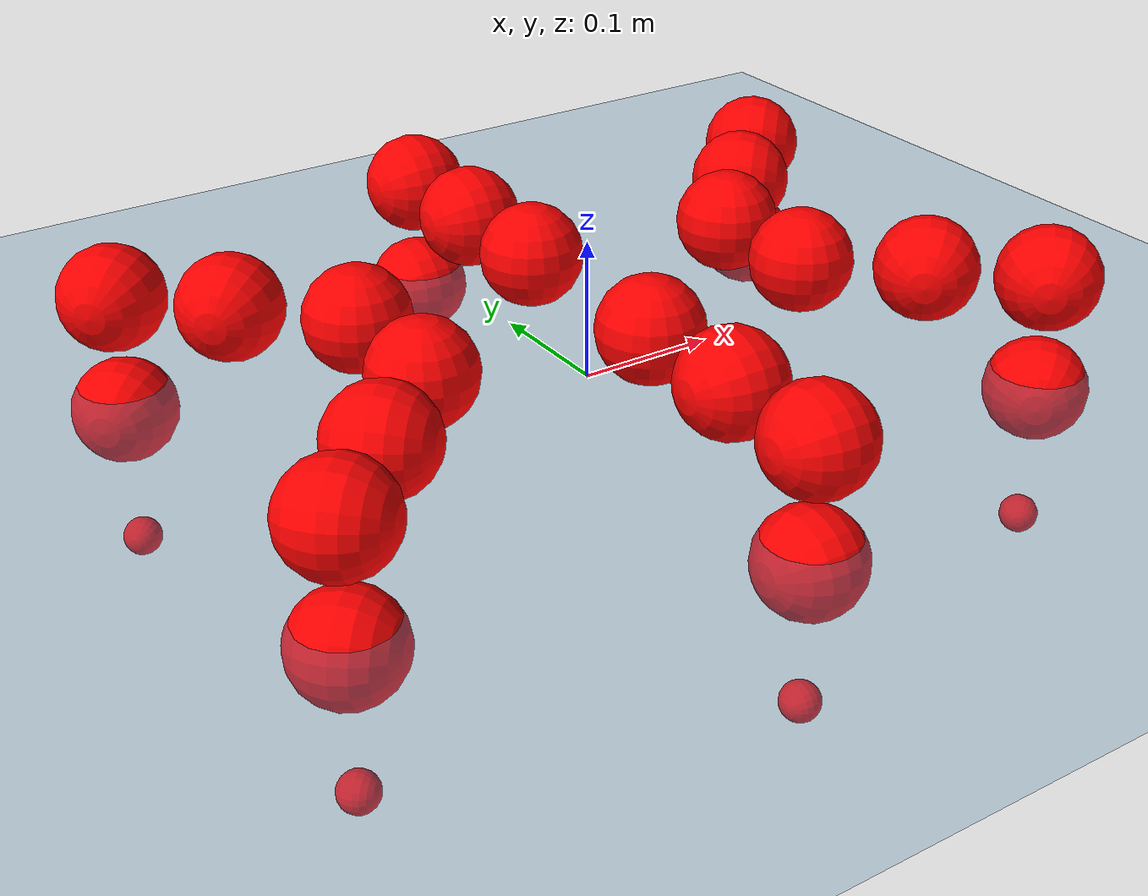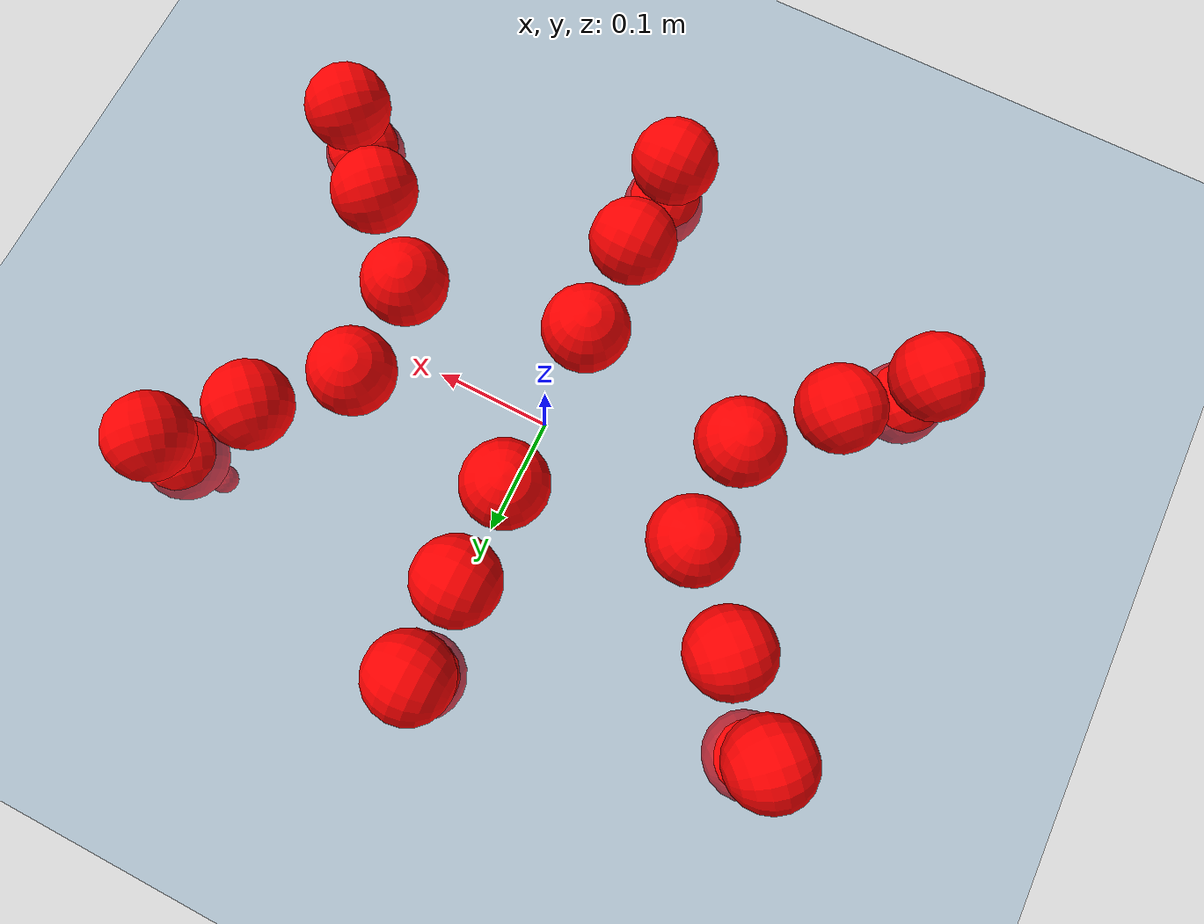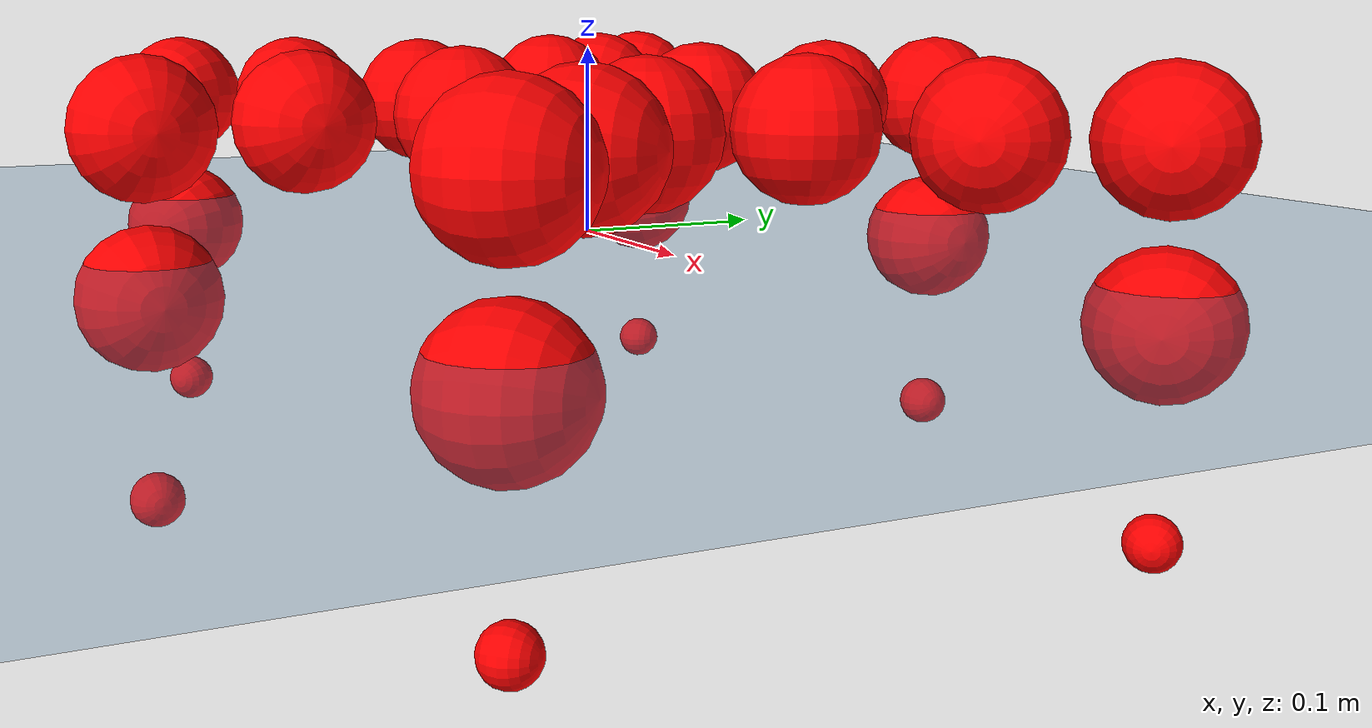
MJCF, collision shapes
<mujoco model="Golem">
  <compiler angle="radian" assetdir="assets" balanceinertia="true" inertiafromgeom="false"/>

  <option timestep="0.005" density="1.2" viscosity="2e-05"/>

  <size nkey="1"/>

  <visual>
    <quality shadowsize="8192"/>
    <map shadowclip="0.5"/>
  </visual>

  <default>
    <default class="/">
      <joint armature="0.01" damping="0.01" frictionloss="0.01"/>
      <geom contype="0" conaffinity="0" group="1" solref="-1000 -80"/>
      <site size="0.01 0.005 0.005" group="5"/>
      <general forcelimited="true" biastype="affine" gainprm="25" biasprm="0 -25 -0.5"/>
      <default class="visual">
        <geom type="mesh" group="2"/>
      </default>
      <default class="collision">
        <geom group="3"/>
      </default>
      <default class="foot">
        <geom size="0.01 0 0" condim="6" group="4" priority="1" solimp="0.015 1 0.01"/>
      </default>
      <default class="reward_collision_sphere">
        <geom group="5" rgba="1 0 0 1"/>
      </default>
    </default>
  </default>

  <asset>
    <texture type="skybox" colorspace="auto" name="//unnamed_texture_0" builtin="gradient" rgb1="0.95 0.95 0.95" rgb2="0.95 0.95 0.95" width="100" height="600"/>
    <texture type="2d" colorspace="auto" name="texplane" builtin="checker" rgb1="0.345 0.575 0.748" rgb2="0.345 0.575 0.748" markrgb="1 1 1" width="512" height="512"/>
    <material name="MatPlane" class="/" texture="texplane" texuniform="true" texrepeat="2 2" specular="0.9"/>
    <mesh name="body" class="/" file="body.stl" scale="0.001 0.001 0.001"/>
    <mesh name="coxa" class="/" file="coxa.stl" scale="0.001 0.001 0.001"/>
    <mesh name="femur" class="/" file="femur.stl" scale="0.001 0.001 0.001"/>
    <mesh name="tibia" class="/" file="tibia.stl" scale="0.001 0.001 0.001"/>
    <mesh name="tarsus" class="/" file="tarsus.stl" scale="0.001 0.001 0.001"/>
  </asset>

  <worldbody>
    <geom name="floor" class="/" size="100 100 0.125" type="plane" group="0" material="MatPlane"/>
    <light name="toplight_shadow" class="/" pos="0 0 5" dir="0.0990148 0.0990148 -0.990148" type="directional" ambient="0.04 0.04 0.04" diffuse="0.55 0.55 0.55" specular="0.12 0.12 0.12"/>
    <light name="toplight_fill" class="/" pos="0 0 5" dir="0.0990148 0.0990148 -0.990148" type="directional" castshadow="false" ambient="0.04 0.04 0.04" diffuse="0.3 0.3 0.3" specular="0.08 0.08 0.08"/>
    <body name="trunk" pos="0.000538723 -0.000305675 -0.000427646" quat="1 -7.52001e-05 4.04285e-05 -5.84042e-05">
      <inertial pos="-0.00051617 -0.000423874 -0.0037241" quat="0.999992 0.00208107 0.000928232 0.00343553" mass="2.81175" diaginertia="0.00804818 0.00246364 0.0116277"/>
      <joint name="//unnamed_joint_0" type="free"/>
      <geom name="//unnamed_geom_1" class="/" pos="0 0 0.0660323" quat="1 0 0 0" type="mesh" rgba="0.9 0.9 0.9 1" mesh="body"/>
      <site name="imu" class="/" pos="0.123336 0.000929996 0.105178" size="0.00916489"/>
      <camera name="track" class="/" pos="0 -1.51554 0" quat="0.707107 0.707107 0 0" mode="trackcom"/>
      <camera name="ego_camera" class="/" pos="0.124793 0 0.103175" quat="-0.5 -0.5 0.5 0.5"/>
      <body name="coxa_RR" pos="-0.170936 -0.062973 0.0655094" quat="0.382704 -5.03322e-06 -2.95511e-05 -0.923871">
        <inertial pos="-0.000177113 -0.000310794 7.20691e-05" quat="0.999997 0.000499554 -0.00107896 0.00206243" mass="0.15189" diaginertia="0.0081446 0.00246242 0.0115855"/>
        <joint name="coxa_joint_RR" class="/" pos="0 0 0" axis="0.000473013 -0.00109019 -0.999999" range="-3.13809 3.15585" armature="0.00954068" damping="0.00972201" frictionloss="0.00917853"/>
        <geom name="//unnamed_geom_2" class="/" type="mesh" rgba="0.2 0.2 0.2 1" mesh="coxa"/>
        <geom name="//unnamed_geom_3" class="reward_collision_sphere" size="0.0366596" pos="-0.0287983 0 0"/>
        <body name="femur_RR" pos="0.056918 0.000185348 0.000260895" quat="0.500266 -0.499812 0.499639 0.500283">
          <inertial pos="-0.00045882 -0.000839174 0.000743898" quat="1 -0.000151225 0.000190178 0.000153832" mass="0.15406" diaginertia="0.00818616 0.00251274 0.0117156"/>
          <joint name="femur_joint_RR" class="/" pos="0 0 0" axis="0.000218062 -3.96296e-05 -1" range="-3.12977 3.13892" armature="0.00957604" damping="0" frictionloss="0.00877647"/>
          <geom name="//unnamed_geom_4" class="/" type="mesh" rgba="0.9 0.9 0.9 1" mesh="femur"/>
          <geom name="//unnamed_geom_5" class="reward_collision_sphere" size="0.0366596"/>
          <body name="tibia_RR" pos="0.000789583 -0.0822379 0.000575024" quat="0.000313056 1 -0.000180402 -1.36591e-05">
            <inertial pos="0.000535106 0.000952673 4.0773e-05" quat="0.999993 -0.000623924 0.000764698 -0.00365096" mass="0.154062" diaginertia="0.00818004 0.00249418 0.0116183"/>
            <joint name="tibia_joint_RR" class="/" pos="0 0 0" axis="-0.00128112 -0.00507953 0.999986" range="-3.14447 3.14317" armature="0.00950304" damping="0.0016709" frictionloss="0.00909122"/>
            <geom name="//unnamed_geom_6" class="/" type="mesh" rgba="0.2 0.2 0.2 1" mesh="tibia"/>
            <geom name="//unnamed_geom_7" class="reward_collision_sphere" size="0.0366596"/>
            <body name="tarsus_RR" pos="0.0838024 0.00028544 -0.000158489" quat="1 -8.27746e-05 -3.61648e-05 -0.000124446">
              <inertial pos="0.0581955 0.000330867 0.000766297" quat="0.500346 0.499901 0.499754 0.499999" mass="0.155034" diaginertia="0.00817247 0.00248694 0.0117495"/>
              <joint name="tarsus_joint_RR" class="/" pos="0 0 0" axis="-0.000574866 0.00278144 0.999996" range="-3.13604 3.1363" armature="0.00876631" damping="0.00860171" frictionloss="0.00885864"/>
              <geom name="//unnamed_geom_8" class="/" type="mesh" rgba="0.9 0.9 0.9 1" mesh="tarsus"/>
              <geom name="foot_1" class="foot" size="0.00932453" pos="0.107514 0 0" quat="0 -0.707107 0 0.707107"/>
              <geom name="//unnamed_geom_10" class="reward_collision_sphere" size="0.0366596"/>
              <geom name="//unnamed_geom_11" class="reward_collision_sphere" size="0.0137473" pos="0.103194 0 0"/>
              <site name="foot_1" class="foot" pos="0.107514 0 0" quat="0 -0.707107 0 0.707107" size="0.00916489"/>
            </body>
          </body>
        </body>
      </body>
      <body name="coxa_RM" pos="-0.000646685 -0.101369 0.0663807" quat="0.70705 -2.38832e-05 -0.000288148 -0.707164">
        <inertial pos="0.000510854 4.71042e-05 0.000716328" quat="1 -0.000350353 -0.000644493 -0.000116674" mass="0.154044" diaginertia="0.0080108 0.002491 0.0116919"/>
        <joint name="coxa_joint_RM" class="/" pos="0 0 0" axis="6.89314e-05 -4.59903e-05 -1" range="-3.15264 3.13927" armature="0.00924819" damping="0.0103816" frictionloss="0.00916404"/>
        <geom name="//unnamed_geom_12" class="/" type="mesh" rgba="0.2 0.2 0.2 1" mesh="coxa"/>
        <geom name="//unnamed_geom_13" class="reward_collision_sphere" size="0.0366596" pos="-0.0287983 0 0"/>
        <body name="femur_RM" pos="0.0569649 -0.00123587 -0.000821599" quat="0.499955 -0.499973 0.500017 0.500056">
          <inertial pos="-0.000345584 0.000213459 -0.000217582" quat="0.999999 0.000494986 -0.000520636 -0.00104884" mass="0.152999" diaginertia="0.0080978 0.00250083 0.0116421"/>
          <joint name="femur_joint_RM" class="/" pos="0 0 0" axis="-0.00169512 -0.00100158 -0.999998" range="-3.14187 3.14035" armature="0.00913833" damping="0.0116536" frictionloss="0.00926329"/>
          <geom name="//unnamed_geom_14" class="/" type="mesh" rgba="0.9 0.9 0.9 1" mesh="femur"/>
          <geom name="//unnamed_geom_15" class="reward_collision_sphere" size="0.0366596"/>
          <body name="tibia_RM" pos="0.0007602 -0.0812724 -0.000574453" quat="-0.000107597 1 6.25212e-05 -0.000157832">
            <inertial pos="0.000225566 -2.88604e-05 -9.48471e-05" quat="0.999997 0.00157961 -0.000866988 -0.00170007" mass="0.154629" diaginertia="0.00818211 0.00250731 0.0116228"/>
            <joint name="tibia_joint_RM" class="/" pos="0 0 0" axis="-1.86423e-05 0.00292882 0.999996" range="-3.15698 3.11854" armature="0.00894511" damping="0" frictionloss="0.0090282"/>
            <geom name="//unnamed_geom_16" class="/" type="mesh" rgba="0.2 0.2 0.2 1" mesh="tibia"/>
            <geom name="//unnamed_geom_17" class="reward_collision_sphere" size="0.0366596"/>
            <body name="tarsus_RM" pos="0.0839428 -0.000411296 -0.000435293" quat="1 -6.01668e-05 0.00021211 -0.00033047">
              <inertial pos="0.0571661 0.000636842 0.00016553" quat="0.499895 0.499904 0.500051 0.50015" mass="0.154226" diaginertia="0.00823064 0.00253984 0.0119077"/>
              <joint name="tarsus_joint_RM" class="/" pos="0 0 0" axis="-0.00476471 0.00251303 0.999985" range="-3.14242 3.12951" armature="0.00875988" damping="0.00417602" frictionloss="0.00912472"/>
              <geom name="//unnamed_geom_18" class="/" type="mesh" rgba="0.9 0.9 0.9 1" mesh="tarsus"/>
              <geom name="foot_2" class="foot" size="0.00911764" pos="0.107514 0 0" quat="0 -0.707107 0 0.707107"/>
              <geom name="//unnamed_geom_20" class="reward_collision_sphere" size="0.0366596"/>
              <geom name="//unnamed_geom_21" class="reward_collision_sphere" size="0.0137473" pos="0.103194 0 0"/>
              <site name="foot_2" class="foot" pos="0.107514 0 0" quat="0 -0.707107 0 0.707107" size="0.00916489"/>
            </body>
          </body>
        </body>
      </body>
      <body name="coxa_RF" pos="0.169809 -0.062218 0.0665725" quat="0.923876 0.000321916 -0.000250947 -0.382692">
        <inertial pos="0.000327273 0.000477602 -7.40666e-05" quat="0.999991 -0.00305077 -0.000794192 -0.00281395" mass="0.156285" diaginertia="0.00834382 0.00249699 0.0119665"/>
        <joint name="coxa_joint_RF" class="/" pos="0 0 0" axis="0.00168724 -0.00583684 -0.999982" range="-3.12178 3.13704" armature="0.00947639" damping="0.00590447" frictionloss="0.00875375"/>
        <geom name="//unnamed_geom_22" class="/" type="mesh" rgba="0.2 0.2 0.2 1" mesh="coxa"/>
        <geom name="//unnamed_geom_23" class="reward_collision_sphere" size="0.0366596" pos="-0.0287983 0 0"/>
        <body name="femur_RF" pos="0.0570732 0.000851595 0.000601701" quat="0.500004 -0.500005 0.499995 0.499996">
          <inertial pos="4.04726e-05 0.000547933 0.000175432" quat="1 -2.07715e-05 -0.00019416 0.000246258" mass="0.153188" diaginertia="0.00809366 0.0024665 0.0116985"/>
          <joint name="femur_joint_RF" class="/" pos="0 0 0" axis="-0.00123668 -0.000255347 -0.999999" range="-3.14426 3.13406" armature="0.00876722" damping="0.0122967" frictionloss="0.00885347"/>
          <geom name="//unnamed_geom_24" class="/" type="mesh" rgba="0.9 0.9 0.9 1" mesh="femur"/>
          <geom name="//unnamed_geom_25" class="reward_collision_sphere" size="0.0366596"/>
          <body name="tibia_RF" pos="5.86605e-05 -0.0816084 -7.41038e-05" quat="-1.78946e-05 1 -7.19036e-06 -3.89481e-06">
            <inertial pos="-6.25297e-05 -0.000258533 -3.16358e-05" quat="0.999999 -0.000364901 -0.00143813 9.50078e-05" mass="0.15533" diaginertia="0.00831097 0.00252558 0.0118278"/>
            <joint name="tibia_joint_RF" class="/" pos="0 0 0" axis="0.00102636 -0.0027828 0.999996" stiffness="0.00110974" range="-3.15697 3.13244" armature="0.00919811" damping="0" frictionloss="0.00876775"/>
            <geom name="//unnamed_geom_26" class="/" type="mesh" rgba="0.2 0.2 0.2 1" mesh="tibia"/>
            <geom name="//unnamed_geom_27" class="reward_collision_sphere" size="0.0366596"/>
            <body name="tarsus_RF" pos="0.083729 0.000521069 0.000902811" quat="1 0.000318191 0.000236075 -0.000269493">
              <inertial pos="0.0575856 0.00108148 6.77462e-05" quat="0.50112 0.50181 0.500943 0.496106" mass="0.156231" diaginertia="0.00822378 0.00249288 0.0117201"/>
              <joint name="tarsus_joint_RF" class="/" pos="0 0 0" axis="0.000192767 0.00039795 1" range="-3.14889 3.13622" armature="0.00903071" damping="0.00874208" frictionloss="0.00932324"/>
              <geom name="//unnamed_geom_28" class="/" type="mesh" rgba="0.9 0.9 0.9 1" mesh="tarsus"/>
              <geom name="foot_3" class="foot" size="0.00906605" pos="0.107514 0 0" quat="0 -0.707107 0 0.707107"/>
              <geom name="//unnamed_geom_30" class="reward_collision_sphere" size="0.0366596"/>
              <geom name="//unnamed_geom_31" class="reward_collision_sphere" size="0.0137473" pos="0.103194 0 0"/>
              <site name="foot_3" class="foot" pos="0.107514 0 0" quat="0 -0.707107 0 0.707107" size="0.00916489"/>
            </body>
          </body>
        </body>
      </body>
      <body name="coxa_LR" pos="-0.169957 0.0653127 0.0670041" quat="0.382816 -9.08813e-05 -3.60523e-05 0.923825">
        <inertial pos="-9.87199e-05 -0.000282973 0.00127679" quat="0.999999 0.000823948 0.00139374 8.11875e-05" mass="0.155844" diaginertia="0.00809868 0.00251211 0.0116796"/>
        <joint name="coxa_joint_LR" class="/" pos="0 0 0" axis="-0.00152621 -0.00136778 -0.999998" range="-3.14167 3.12737" armature="0.00887791" damping="0.0101918" frictionloss="0.00914301"/>
        <geom name="//unnamed_geom_32" class="/" type="mesh" rgba="0.2 0.2 0.2 1" mesh="coxa"/>
        <geom name="//unnamed_geom_33" class="reward_collision_sphere" size="0.0366596" pos="-0.0287983 0 0"/>
        <body name="femur_LR" pos="0.0590022 -0.00221069 -0.0011219" quat="0.499743 -0.499878 0.500265 0.500114">
          <inertial pos="4.96565e-05 -0.000451573 2.8202e-05" quat="1 5.38995e-05 -6.39505e-05 -0.000107523" mass="0.152792" diaginertia="0.00799907 0.00247086 0.0115667"/>
          <joint name="femur_joint_LR" class="/" pos="0 0 0" axis="0.000895554 0.000511684 0.999999" range="-3.12285 3.15406" armature="0.00964686" damping="0.0107135" frictionloss="0.00935399"/>
          <geom name="//unnamed_geom_34" class="/" type="mesh" rgba="0.9 0.9 0.9 1" mesh="femur"/>
          <geom name="//unnamed_geom_35" class="reward_collision_sphere" size="0.0366596"/>
          <body name="tibia_LR" pos="0.00091897 -0.0833501 -0.000408433" quat="9.28242e-05 1 -4.17799e-05 -0.000111303">
            <inertial pos="-0.000123993 9.03353e-05 7.67626e-05" quat="0.999993 -0.0012842 -0.00293016 0.00183397" mass="0.156943" diaginertia="0.00832754 0.00249878 0.0117488"/>
            <joint name="tibia_joint_LR" class="/" pos="0 0 0" axis="-0.00263936 -0.000968701 -0.999996" range="-3.1424 3.14158" armature="0.0091653" damping="0.00406383" frictionloss="0.00877102"/>
            <geom name="//unnamed_geom_36" class="/" type="mesh" rgba="0.2 0.2 0.2 1" mesh="tibia"/>
            <geom name="//unnamed_geom_37" class="reward_collision_sphere" size="0.0366596"/>
            <body name="tarsus_LR" pos="0.0855964 0.0017382 0.00129922" quat="1 0.000428706 5.74065e-05 -0.000203804">
              <inertial pos="0.0596054 -0.000363358 0.000764161" quat="0.501053 0.500134 0.499388 0.499424" mass="0.15555" diaginertia="0.00814326 0.0024687 0.0117505"/>
              <joint name="tarsus_joint_LR" class="/" pos="0 0 0" axis="0.00237323 -0.00271999 -0.999993" range="-3.12551 3.14079" armature="0.00936464" damping="0.0268501" frictionloss="0.00926936"/>
              <geom name="//unnamed_geom_38" class="/" type="mesh" rgba="0.9 0.9 0.9 1" mesh="tarsus"/>
              <geom name="foot_4" class="foot" size="0.00927453" pos="0.107514 0 0" quat="0.707107 0 -0.707107 0"/>
              <geom name="//unnamed_geom_40" class="reward_collision_sphere" size="0.0366596"/>
              <geom name="//unnamed_geom_41" class="reward_collision_sphere" size="0.0137473" pos="0.103194 0 0"/>
              <site name="foot_4" class="foot" pos="0.107514 0 0" quat="0.707107 0 -0.707107 0" size="0.00916489"/>
            </body>
          </body>
        </body>
      </body>
      <body name="coxa_LM" pos="-0.000309757 0.099242 0.0661236" quat="0.706948 -0.000166481 -0.000244679 0.707265">
        <inertial pos="-0.00063612 -3.13516e-05 -4.17022e-05" quat="0.999993 0.00289881 -0.00241398 -0.000541904" mass="0.155323" diaginertia="0.00813062 0.00252414 0.0117865"/>
        <joint name="coxa_joint_LM" class="/" pos="0 0 0" axis="0.000102913 0.000421452 -1" range="-3.14988 3.15154" armature="0.00920387" damping="0.00847274" frictionloss="0.00906981"/>
        <geom name="//unnamed_geom_42" class="/" type="mesh" rgba="0.2 0.2 0.2 1" mesh="coxa"/>
        <geom name="//unnamed_geom_43" class="reward_collision_sphere" size="0.0366596" pos="-0.0287983 0 0"/>
        <body name="femur_LM" pos="0.054466 0.00109375 0.000124401" quat="0.499995 -0.500003 0.499988 0.500014">
          <inertial pos="-0.000954128 -0.000578161 0.000830047" quat="1 -0.000550648 0.000148384 -0.000208905" mass="0.153242" diaginertia="0.00803965 0.00247965 0.0115115"/>
          <joint name="femur_joint_LM" class="/" pos="0 0 0" axis="-0.00644345 0.00015328 0.999979" range="-3.142 3.13837" armature="0.00918072" damping="0.00191626" frictionloss="0.00877114"/>
          <geom name="//unnamed_geom_44" class="/" type="mesh" rgba="0.9 0.9 0.9 1" mesh="femur"/>
          <geom name="//unnamed_geom_45" class="reward_collision_sphere" size="0.0366596"/>
          <body name="tibia_LM" pos="-0.000743387 -0.0787781 0.00158952" quat="-7.95101e-06 1 -3.6615e-07 7.3695e-06">
            <inertial pos="-0.00121508 -0.000289921 -0.000170884" quat="1 -0.000213206 -1.13404e-05 0.000718038" mass="0.151568" diaginertia="0.00804124 0.00245134 0.0114351"/>
            <joint name="tibia_joint_LM" class="/" pos="0 0 0" axis="0.00611309 -0.00101376 -0.999981" range="-3.13641 3.13712" armature="0.00917996" damping="0.00367669" frictionloss="0.00917874"/>
            <geom name="//unnamed_geom_46" class="/" type="mesh" rgba="0.2 0.2 0.2 1" mesh="tibia"/>
            <geom name="//unnamed_geom_47" class="reward_collision_sphere" size="0.0366596"/>
            <body name="tarsus_LM" pos="0.0843104 -0.000336576 -0.00061105" quat="1 -3.20864e-05 8.43105e-05 -0.000117426">
              <inertial pos="0.0580208 -0.00117404 -0.000585009" quat="0.501042 0.500708 0.50125 0.496987" mass="0.155015" diaginertia="0.00809172 0.00248053 0.0116704"/>
              <joint name="tarsus_joint_LM" class="/" pos="0 0 0" axis="-0.00016577 -0.00248869 -0.999997" range="-3.13942 3.13367" armature="0.00925193" damping="0" frictionloss="0.00918928"/>
              <geom name="//unnamed_geom_48" class="/" type="mesh" rgba="0.9 0.9 0.9 1" mesh="tarsus"/>
              <geom name="foot_5" class="foot" size="0.0089738" pos="0.107514 0 0" quat="0.707107 0 -0.707107 0"/>
              <geom name="//unnamed_geom_50" class="reward_collision_sphere" size="0.0366596"/>
              <geom name="//unnamed_geom_51" class="reward_collision_sphere" size="0.0137473" pos="0.103194 0 0"/>
              <site name="foot_5" class="foot" pos="0.107514 0 0" quat="0.707107 0 -0.707107 0" size="0.00916489"/>
            </body>
          </body>
        </body>
      </body>
      <body name="coxa_LF" pos="0.171274 0.064099 0.0659822" quat="0.92383 -3.40146e-05 1.02546e-05 0.382803">
        <inertial pos="-6.37404e-05 -0.000135645 -0.000261609" quat="0.999998 0.00024223 0.00175381 -5.26856e-06" mass="0.154344" diaginertia="0.00809393 0.00247641 0.0117339"/>
        <joint name="coxa_joint_LF" class="/" pos="0 0 0" axis="-0.0010905 0.000376535 -0.999999" range="-3.1289 3.13926" armature="0.00918703" damping="0" frictionloss="0.00939033"/>
        <geom name="//unnamed_geom_52" class="/" type="mesh" rgba="0.2 0.2 0.2 1" mesh="coxa"/>
        <geom name="//unnamed_geom_53" class="reward_collision_sphere" size="0.0366596" pos="-0.0287983 0 0"/>
        <body name="femur_LF" pos="0.0568904 0.000507768 -0.000568076" quat="0.500015 -0.499877 0.500012 0.500095">
          <inertial pos="-0.000259348 -0.000263955 2.60806e-05" quat="0.999991 0.00209124 -0.00217814 0.00307395" mass="0.155889" diaginertia="0.00821657 0.0024846 0.0116898"/>
          <joint name="femur_joint_LF" class="/" pos="0 0 0" axis="0.00112533 -0.00228165 0.999997" range="-3.13742 3.13677" armature="0.00906368" damping="0.00137055" frictionloss="0.00907002"/>
          <geom name="//unnamed_geom_54" class="/" type="mesh" rgba="0.9 0.9 0.9 1" mesh="femur"/>
          <geom name="//unnamed_geom_55" class="reward_collision_sphere" size="0.0366596"/>
          <body name="tibia_LF" pos="-0.000319586 -0.0809538 0.000419328" quat="-0.000158892 1 6.76193e-07 2.49856e-07">
            <inertial pos="0.000364178 0.000435924 -9.97083e-05" quat="0.999999 -4.29659e-05 0.000350405 0.00128631" mass="0.152189" diaginertia="0.00810475 0.00250567 0.011705"/>
            <joint name="tibia_joint_LF" class="/" pos="0 0 0" axis="0.0015607 0.000866138 -0.999998" range="-3.12142 3.12813" armature="0.0091877" damping="0" frictionloss="0.00914485"/>
            <geom name="//unnamed_geom_56" class="/" type="mesh" rgba="0.2 0.2 0.2 1" mesh="tibia"/>
            <geom name="//unnamed_geom_57" class="reward_collision_sphere" size="0.0366596"/>
            <body name="tarsus_LF" pos="0.0842805 -0.00014769 -0.000819282" quat="1 -0.000274673 -0.000163681 -0.00019652">
              <inertial pos="0.0574235 0.000138167 0.000220101" quat="0.499959 0.500034 0.500047 0.499961" mass="0.156911" diaginertia="0.00829312 0.00254771 0.0118705"/>
              <joint name="tarsus_joint_LF" class="/" pos="0 0 0" axis="-0.000228217 0.000380233 -1" range="-3.13643 3.14867" armature="0.00910357" damping="0.0160247" frictionloss="0.00951737"/>
              <geom name="//unnamed_geom_58" class="/" type="mesh" rgba="0.9 0.9 0.9 1" mesh="tarsus"/>
              <geom name="foot_6" class="foot" size="0.00926524" pos="0.107514 0 0" quat="0.707107 0 -0.707107 0"/>
              <geom name="//unnamed_geom_60" class="reward_collision_sphere" size="0.0366596"/>
              <geom name="//unnamed_geom_61" class="reward_collision_sphere" size="0.0137473" pos="0.103194 0 0"/>
              <site name="foot_6" class="foot" pos="0.107514 0 0" quat="0.707107 0 -0.707107 0" size="0.00916489"/>
            </body>
          </body>
        </body>
      </body>
    </body>
  </worldbody>

  <contact>
    <pair class="/" geom1="floor" geom2="foot_1" name="//unnamed_contact_0"/>
    <pair class="/" geom1="floor" geom2="foot_2" name="//unnamed_contact_1"/>
    <pair class="/" geom1="floor" geom2="foot_3" name="//unnamed_contact_2"/>
    <pair class="/" geom1="floor" geom2="foot_4" name="//unnamed_contact_3"/>
    <pair class="/" geom1="floor" geom2="foot_5" name="//unnamed_contact_4"/>
    <pair class="/" geom1="floor" geom2="foot_6" name="//unnamed_contact_5"/>
  </contact>

  <actuator>
    <general name="coxa_joint_RR" class="/" joint="coxa_joint_RR" forcerange="-6.46664 6.46664" gainprm="22.3045" biasprm="0 -22.3045 -0.47915"/>
    <general name="femur_joint_RR" class="/" joint="femur_joint_RR" forcerange="-6.49774 6.49774" gainprm="22.3045" biasprm="0 -22.3045 -0.47915"/>
    <general name="tibia_joint_RR" class="/" joint="tibia_joint_RR" forcerange="-6.86648 6.86648" gainprm="22.3045" biasprm="0 -22.3045 -0.47915"/>
    <general name="tarsus_joint_RR" class="/" joint="tarsus_joint_RR" forcerange="-6.81682 6.81682" gainprm="22.3045" biasprm="0 -22.3045 -0.47915"/>
    <general name="coxa_joint_RM" class="/" joint="coxa_joint_RM" forcerange="-6.66506 6.66506" gainprm="22.3045" biasprm="0 -22.3045 -0.47915"/>
    <general name="femur_joint_RM" class="/" joint="femur_joint_RM" forcerange="-6.80112 6.80112" gainprm="22.3045" biasprm="0 -22.3045 -0.47915"/>
    <general name="tibia_joint_RM" class="/" joint="tibia_joint_RM" forcerange="-6.63914 6.63914" gainprm="22.3045" biasprm="0 -22.3045 -0.47915"/>
    <general name="tarsus_joint_RM" class="/" joint="tarsus_joint_RM" forcerange="-6.76024 6.76024" gainprm="22.3045" biasprm="0 -22.3045 -0.47915"/>
    <general name="coxa_joint_RF" class="/" joint="coxa_joint_RF" forcerange="-6.64652 6.64652" gainprm="22.3045" biasprm="0 -22.3045 -0.47915"/>
    <general name="femur_joint_RF" class="/" joint="femur_joint_RF" forcerange="-6.90845 6.90845" gainprm="22.3045" biasprm="0 -22.3045 -0.47915"/>
    <general name="tibia_joint_RF" class="/" joint="tibia_joint_RF" forcerange="-6.74701 6.74701" gainprm="22.3045" biasprm="0 -22.3045 -0.47915"/>
    <general name="tarsus_joint_RF" class="/" joint="tarsus_joint_RF" forcerange="-6.67099 6.67099" gainprm="22.3045" biasprm="0 -22.3045 -0.47915"/>
    <general name="coxa_joint_LR" class="/" joint="coxa_joint_LR" forcerange="-6.71159 6.71159" gainprm="22.3045" biasprm="0 -22.3045 -0.47915"/>
    <general name="femur_joint_LR" class="/" joint="femur_joint_LR" forcerange="-6.74214 6.74214" gainprm="22.3045" biasprm="0 -22.3045 -0.47915"/>
    <general name="tibia_joint_LR" class="/" joint="tibia_joint_LR" forcerange="-6.87059 6.87059" gainprm="22.3045" biasprm="0 -22.3045 -0.47915"/>
    <general name="tarsus_joint_LR" class="/" joint="tarsus_joint_LR" forcerange="-6.74466 6.74466" gainprm="22.3045" biasprm="0 -22.3045 -0.47915"/>
    <general name="coxa_joint_LM" class="/" joint="coxa_joint_LM" forcerange="-6.61725 6.61725" gainprm="22.3045" biasprm="0 -22.3045 -0.47915"/>
    <general name="femur_joint_LM" class="/" joint="femur_joint_LM" forcerange="-6.70299 6.70299" gainprm="22.3045" biasprm="0 -22.3045 -0.47915"/>
    <general name="tibia_joint_LM" class="/" joint="tibia_joint_LM" forcerange="-6.69565 6.69565" gainprm="22.3045" biasprm="0 -22.3045 -0.47915"/>
    <general name="tarsus_joint_LM" class="/" joint="tarsus_joint_LM" forcerange="-6.75907 6.75907" gainprm="22.3045" biasprm="0 -22.3045 -0.47915"/>
    <general name="coxa_joint_LF" class="/" joint="coxa_joint_LF" forcerange="-6.72382 6.72382" gainprm="22.3045" biasprm="0 -22.3045 -0.47915"/>
    <general name="femur_joint_LF" class="/" joint="femur_joint_LF" forcerange="-6.64536 6.64536" gainprm="22.3045" biasprm="0 -22.3045 -0.47915"/>
    <general name="tibia_joint_LF" class="/" joint="tibia_joint_LF" forcerange="-6.58335 6.58335" gainprm="22.3045" biasprm="0 -22.3045 -0.47915"/>
    <general name="tarsus_joint_LF" class="/" joint="tarsus_joint_LF" forcerange="-6.66001 6.66001" gainprm="22.3045" biasprm="0 -22.3045 -0.47915"/>
  </actuator>

  <sensor>
    <gyro site="imu" name="imu_angular_velocity"/>
    <velocimeter site="imu" name="imu_linear_velocity"/>
    <framelinvel objtype="site" objname="foot_1" name="foot_1_global_linear_velocity"/>
    <framelinvel objtype="site" objname="foot_2" name="foot_2_global_linear_velocity"/>
    <framelinvel objtype="site" objname="foot_3" name="foot_3_global_linear_velocity"/>
    <framelinvel objtype="site" objname="foot_4" name="foot_4_global_linear_velocity"/>
    <framelinvel objtype="site" objname="foot_5" name="foot_5_global_linear_velocity"/>
    <framelinvel objtype="site" objname="foot_6" name="foot_6_global_linear_velocity"/>
  </sensor>

  <keyframe>
    <key name="home" qpos="0 0 0.1457 1 0 0 0 0 0 0 0 0 0 0 0 0 0 0 0 0 0 0 0 0 0 0 0 0 0 0 0"/>
  </keyframe>
</mujoco>
